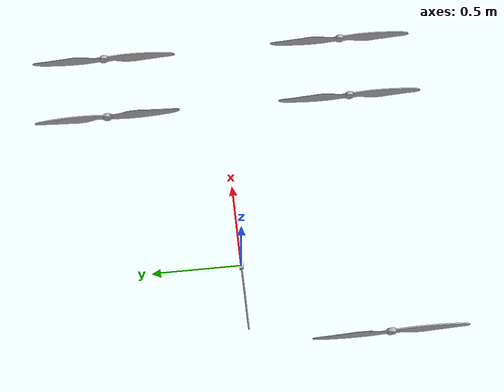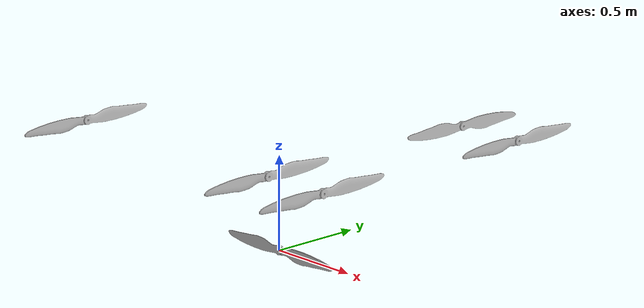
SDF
<?xml version="1.0" ?>
<sdf version="1.7">
  <model name="rover_argo_N1">
    <static>false</static>
    <link name="helice1">
      <pose>0.0 0.0 0.0 0.0 -0.0 0.0</pose>
      <visual name="helice1_visual">
        <pose>0 0 0 0 0 0</pose>
        <geometry>
          <mesh>
            <uri>model://rover_argo_N1/meshes/helice.dae</uri>
          </mesh>
        </geometry>
      </visual>
    </link>
    <link name="helice3">
      <pose>-0.7150071859359741 -0.6524609327316284 0.6604171991348267 0.0 -0.0 -1.570796251296997</pose>
      <visual name="helice3_visual">
        <pose>0 0 0 0 0 0</pose>
        <geometry>
          <mesh>
            <uri>model://rover_argo_N1/meshes/helice.dae</uri>
          </mesh>
        </geometry>
      </visual>
    </link>
    <link name="helice2">
      <pose>0.6400066614151001 -0.6524609327316284 0.6604171991348267 0.0 -0.0 -1.570796251296997</pose>
      <visual name="helice2_visual">
        <pose>0 0 0 0 0 0</pose>
        <geometry>
          <mesh>
            <uri>model://rover_argo_N1/meshes/helice.dae</uri>
          </mesh>
        </geometry>
      </visual>
    </link>
    <link name="helice4">
      <pose>0.6400066614151001 0.6475362777709961 0.6604171991348267 0.0 -0.0 1.5707963705062866</pose>
      <visual name="helice4_visual">
        <pose>0 0 0 0 0 0</pose>
        <geometry>
          <mesh>
            <uri>model://rover_argo_N1/meshes/helice.dae</uri>
          </mesh>
        </geometry>
      </visual>
    </link>
    <link name="helice6">
      <pose>1.0117169618606567 0.6475362777709961 0.6604171991348267 0.0 -0.0 -1.570796251296997</pose>
      <visual name="helice6_visual">
        <pose>0 0 0 0 0 0</pose>
        <geometry>
          <mesh>
            <uri>model://rover_argo_N1/meshes/helice.dae</uri>
          </mesh>
        </geometry>
      </visual>
    </link>
    <link name="helice5">
      <pose>1.0117169618606567 -0.6527122259140015 0.6604171991348267 0.0 -0.0 -1.570796251296997</pose>
      <visual name="helice5_visual">
        <pose>0 0 0 0 0 0</pose>
        <geometry>
          <mesh>
            <uri>model://rover_argo_N1/meshes/helice.dae</uri>
          </mesh>
        </geometry>
      </visual>
    </link>
    <joint name="helice1_joint" type="revolute">
      <parent>base_link</parent>
      <child>helice1</child>
      <pose>0 0 0 0 0 0</pose>
      <axis>
        <xyz>1 0 0</xyz>
        <dynamics>
          <damping>0.1</damping>
          <friction>0.2</friction>
        </dynamics>
      </axis>
    </joint>
    <joint name="helice2_joint" type="revolute">
      <parent>base_link</parent>
      <child>helice2</child>
      <pose>0 0 0 0 0 0</pose>
      <axis>
        <xyz>1 0 0</xyz>
        <dynamics>
          <damping>0.1</damping>
          <friction>0.2</friction>
        </dynamics>
      </axis>
    </joint>
    <joint name="helice3_joint" type="revolute">
      <parent>base_link</parent>
      <child>helice3</child>
      <pose>0 0 0 0 0 0</pose>
      <axis>
        <xyz>1 0 0</xyz>
        <dynamics>
          <damping>0.1</damping>
          <friction>0.2</friction>
        </dynamics>
      </axis>
    </joint>
    <joint name="helice4_joint" type="revolute">
      <parent>base_link</parent>
      <child>helice4</child>
      <pose>0 0 0 0 0 0</pose>
      <axis>
        <xyz>1 0 0</xyz>
        <dynamics>
          <damping>0.1</damping>
          <friction>0.2</friction>
        </dynamics>
      </axis>
    </joint>
    <joint name="helice5_joint" type="revolute">
      <parent>base_link</parent>
      <child>helice5</child>
      <pose>0 0 0 0 0 0</pose>
      <axis>
        <xyz>1 0 0</xyz>
        <dynamics>
          <damping>0.1</damping>
          <friction>0.2</friction>
        </dynamics>
      </axis>
    </joint>
    <joint name="helice6_joint" type="revolute">
      <parent>base_link</parent>
      <child>helice6</child>
      <pose>0 0 0 0 0 0</pose>
      <axis>
        <xyz>1 0 0</xyz>
        <dynamics>
          <damping>0.1</damping>
          <friction>0.2</friction>
        </dynamics>
      </axis>
    </joint>
  </model>
</sdf>
